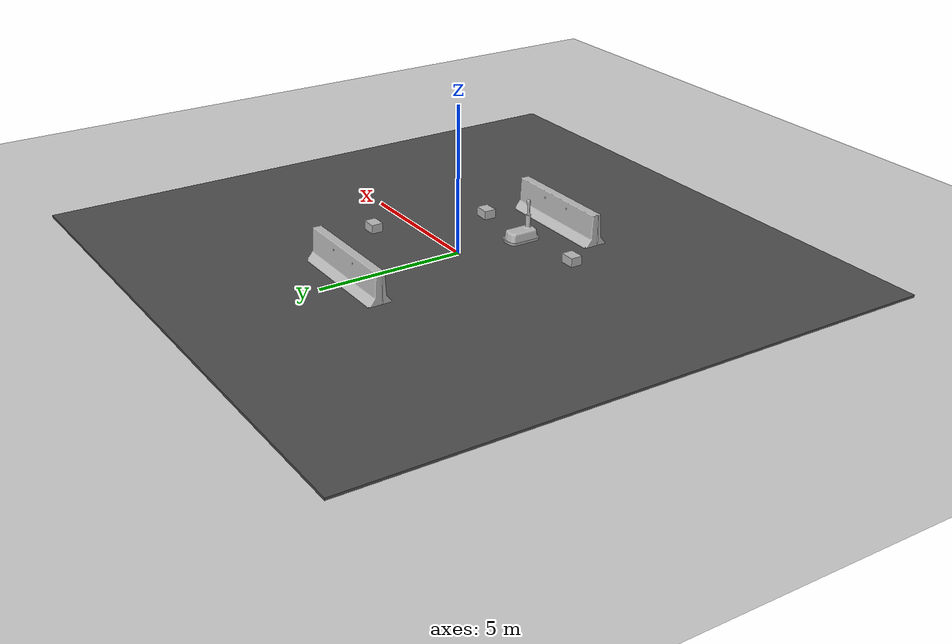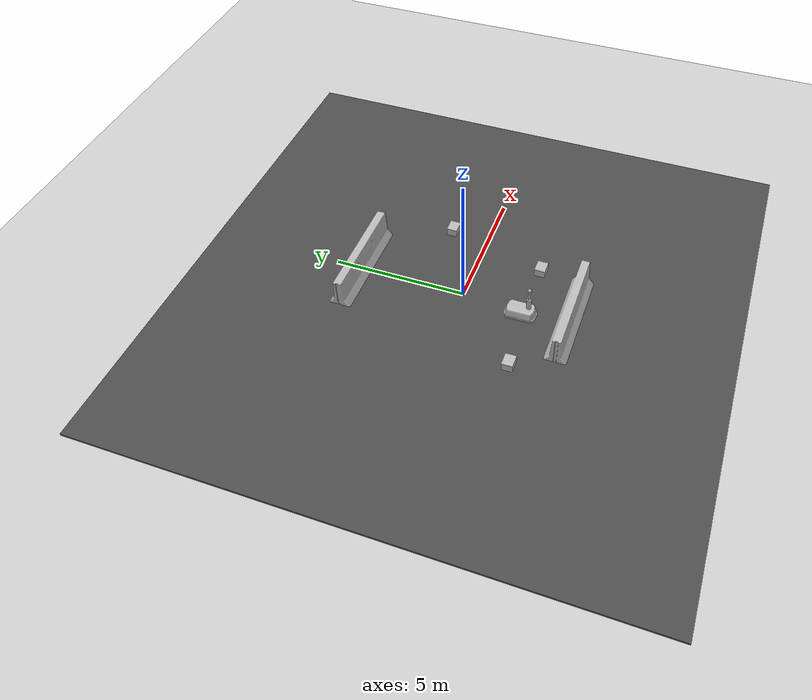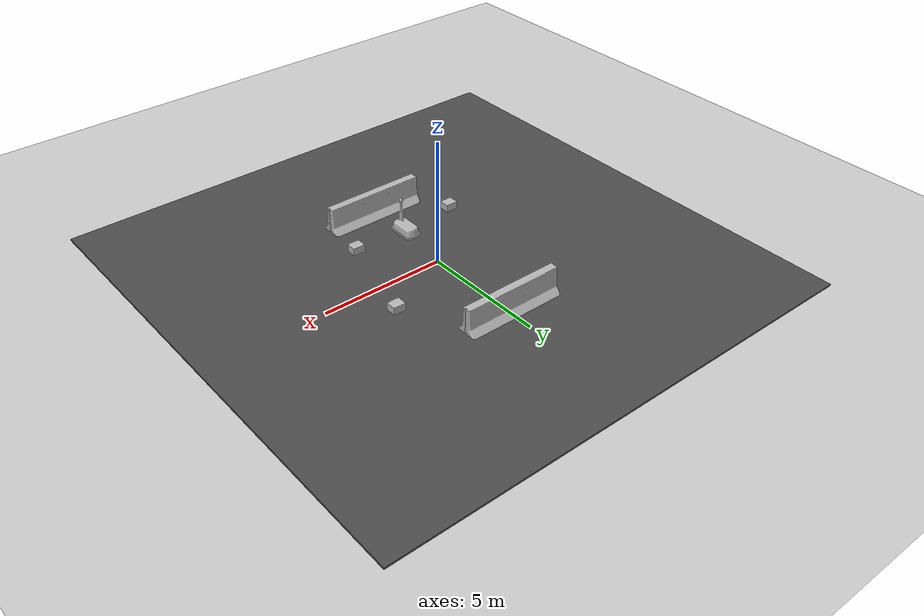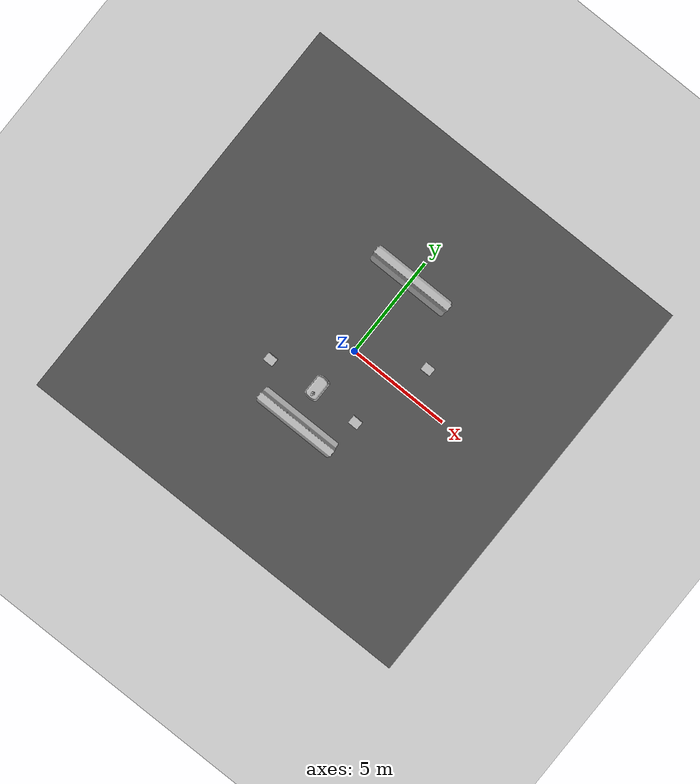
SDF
<sdf version="1.7">
 <world name="default">
  <light name="sun" type="directional">
   <pose>0 0 10 0 -0 0</pose>
   <diffuse>0.8 0.8 0.8 1</diffuse>
   <specular>0.2 0.2 0.2 1</specular>
   <attenuation>
    <range>1000</range>
    <constant>0.9</constant>
    <linear>0.01</linear>
    <quadratic>0.001</quadratic>
   </attenuation>
   <direction>-0.5 0.1 -0.9</direction>
   <spot><inner_angle>0</inner_angle><outer_angle>0</outer_angle><falloff>0</falloff></spot>
  </light>
  <model name="ground_plane">
   <static>1</static>
   <link name="link">
    <collision name="collision">
     <geometry><plane><normal>0 0 1</normal><size>100 100</size></plane></geometry>
     <surface>
      <contact><collide_bitmask>65535</collide_bitmask></contact>
      <friction><ode><mu>100</mu><mu2>50</mu2></ode></friction>
     </surface>
    </collision>
    <visual name="visual">
     <cast_shadows>0</cast_shadows>
     <geometry><plane><normal>0 0 1</normal><size>100 100</size></plane></geometry>
     <material>
      <script><uri>file://media/materials/scripts/gazebo.material</uri><name>Gazebo/Grey</name></script>
     </material>
    </visual>
   </link>
  </model>
  <gravity>0 0 -9.8</gravity>
  <magnetic_field>6e-06 2.3e-05 -4.2e-05</magnetic_field>
  <atmosphere type="adiabatic"/>
  <physics type="ode">
   <max_step_size>0.001</max_step_size>
   <real_time_factor>1</real_time_factor>
   <real_time_update_rate>1000</real_time_update_rate>
  </physics>
  <scene><ambient>0.4 0.4 0.4 1</ambient><background>0.7 0.7 0.7 1</background><shadows>1</shadows></scene>
  <spherical_coordinates>
   <surface_model>EARTH_WGS84</surface_model>
   <latitude_deg>0</latitude_deg>
   <longitude_deg>0</longitude_deg>
   <elevation>0</elevation>
   <heading_deg>0</heading_deg>
  </spherical_coordinates>
  <model name="asphalt_plane">
   <static>1</static>
   <link name="link">
    <collision name="collision"><geometry><box><size>20 20 0.1</size></box></geometry></collision>
    <visual name="visual">
     <cast_shadows>0</cast_shadows>
     <geometry><box><size>20 20 0.1</size></box></geometry>
     <material>
      <script>
       <uri>model://asphalt_plane/materials/scripts</uri>
       <uri>model://asphalt_plane/materials/textures</uri>
       <name>vrc/asphalt</name>
      </script>
     </material>
    </visual>
   </link>
   <pose>-0.020091 0.057762 0 0 -0 0</pose>
  </model>
  <model name="jersey_barrier">
   <static>1</static>
   <link name="link">
    <visual name="visual">
     <geometry><mesh><uri>model://jersey_barrier/meshes/jersey_barrier.dae</uri></mesh></geometry>
    </visual>
    <collision name="upright">
     <pose>0 0 0.5715 0 -0 0</pose>
     <geometry><box><size>4.06542 0.3063 1.143</size></box></geometry>
    </collision>
    <collision name="base">
     <pose>0 0 0.032258 0 -0 0</pose>
     <geometry><box><size>4.06542 0.8107 0.064516</size></box></geometry>
    </collision>
    <collision name="base2">
     <pose>0 0 0.1 0 -0 0</pose>
     <geometry><box><size>4.06542 0.65 0.1</size></box></geometry>
    </collision>
    <collision name="base3">
     <pose>0 0 0.2 0 -0 0</pose>
     <geometry><box><size>4.06542 0.5 0.1</size></box></geometry>
    </collision>
    <collision name="left-angle">
     <pose>0 -0.224 0.2401 0.9 -0 0</pose>
     <geometry><box><size>4.06542 0.5 0.064516</size></box></geometry>
    </collision>
    <collision name="right-angle">
     <pose>0 0.224 0.2401 -0.9 0 0</pose>
     <geometry><box><size>4.06542 0.5 0.064516</size></box></geometry>
    </collision>
   </link>
   <pose>0 4 0 0 -0 0</pose>
  </model>
  <model name="jersey_barrier_0">
   <static>1</static>
   <link name="link">
    <visual name="visual">
     <geometry><mesh><uri>model://jersey_barrier/meshes/jersey_barrier.dae</uri></mesh></geometry>
    </visual>
    <collision name="upright">
     <pose>0 0 0.5715 0 -0 0</pose>
     <geometry><box><size>4.06542 0.3063 1.143</size></box></geometry>
    </collision>
    <collision name="base">
     <pose>0 0 0.032258 0 -0 0</pose>
     <geometry><box><size>4.06542 0.8107 0.064516</size></box></geometry>
    </collision>
    <collision name="base2">
     <pose>0 0 0.1 0 -0 0</pose>
     <geometry><box><size>4.06542 0.65 0.1</size></box></geometry>
    </collision>
    <collision name="base3">
     <pose>0 0 0.2 0 -0 0</pose>
     <geometry><box><size>4.06542 0.5 0.1</size></box></geometry>
    </collision>
    <collision name="left-angle">
     <pose>0 -0.224 0.2401 0.9 -0 0</pose>
     <geometry><box><size>4.06542 0.5 0.064516</size></box></geometry>
    </collision>
    <collision name="right-angle">
     <pose>0 0.224 0.2401 -0.9 0 0</pose>
     <geometry><box><size>4.06542 0.5 0.064516</size></box></geometry>
    </collision>
   </link>
   <pose>0 -4 0 0 -0 0</pose>
  </model>
  <model name="cardboard_box">
   <pose>1.98646 -2.39561 0.199012 -3.6e-05 -2.2e-05 -0.021077</pose>
   <link name="link">
    <inertial>
     <mass>2</mass>
     <inertia>
      <ixx>0.0416667</ixx>
      <ixy>0</ixy>
      <ixz>0</ixz>
      <iyy>0.0566667</iyy>
      <iyz>0</iyz>
      <izz>0.0683333</izz>
     </inertia>
    </inertial>
    <collision name="collision">
     <geometry><box><size>0.5 0.4 0.3</size></box></geometry>
     <surface>
      <friction><ode><mu>1</mu><mu2>1</mu2></ode></friction>
      <contact><ode><kp>1e+07</kp><kd>1</kd><min_depth>0.001</min_depth><max_vel>0.1</max_vel></ode></contact>
     </surface>
    </collision>
    <visual name="visual">
     <pose>0 0 -0.15 0 -0 0</pose>
     <geometry>
      <mesh><uri>model://cardboard_box/meshes/cardboard_box.dae</uri><scale>1.25932 1.00745 0.755591</scale></mesh>
     </geometry>
    </visual>
   </link>
  </model>
  <model name="cardboard_box_0">
   <pose>3 1.42102 0.199 0 -0 0</pose>
   <link name="link">
    <inertial>
     <mass>2</mass>
     <inertia>
      <ixx>0.0416667</ixx>
      <ixy>0</ixy>
      <ixz>0</ixz>
      <iyy>0.0566667</iyy>
      <iyz>0</iyz>
      <izz>0.0683333</izz>
     </inertia>
    </inertial>
    <collision name="collision">
     <geometry><box><size>0.5 0.4 0.3</size></box></geometry>
     <surface>
      <friction><ode><mu>1</mu><mu2>1</mu2></ode></friction>
      <contact><ode><kp>1e+07</kp><kd>1</kd><min_depth>0.001</min_depth><max_vel>0.1</max_vel></ode></contact>
     </surface>
    </collision>
    <visual name="visual">
     <pose>0 0 -0.15 0 -0 0</pose>
     <geometry>
      <mesh><uri>model://cardboard_box/meshes/cardboard_box.dae</uri><scale>1.25932 1.00745 0.755591</scale></mesh>
     </geometry>
    </visual>
   </link>
  </model>
  <model name="cardboard_box_1">
   <pose>-2.64583 -2.56991 0.199 0 -0 0</pose>
   <link name="link">
    <inertial>
     <mass>2</mass>
     <inertia>
      <ixx>0.0416667</ixx>
      <ixy>0</ixy>
      <ixz>0</ixz>
      <iyy>0.0566667</iyy>
      <iyz>0</iyz>
      <izz>0.0683333</izz>
     </inertia>
    </inertial>
    <collision name="collision">
     <geometry><box><size>0.5 0.4 0.3</size></box></geometry>
     <surface>
      <friction><ode><mu>1</mu><mu2>1</mu2></ode></friction>
      <contact><ode><kp>1e+07</kp><kd>1</kd><min_depth>0.001</min_depth><max_vel>0.1</max_vel></ode></contact>
     </surface>
    </collision>
    <visual name="visual">
     <pose>0 0 -0.15 0 -0 0</pose>
     <geometry>
      <mesh><uri>model://cardboard_box/meshes/cardboard_box.dae</uri><scale>1.25932 1.00745 0.755591</scale></mesh>
     </geometry>
    </visual>
   </link>
  </model>
  <model name="warehouse_robot">
   <static>1</static>
   <link name="link">
    <visual name="visual">
     <geometry><mesh><uri>model://warehouse_robot/meshes/robot.dae</uri></mesh></geometry>
    </visual>
    <collision name="collision_base">
     <pose>0 0 0.20437 0 -0 0</pose>
     <geometry><box><size>0.55508 1.0228 0.40874</size></box></geometry>
    </collision>
    <collision name="collision_bumper">
     <pose>0 0 0.062205 0 -0 0</pose>
     <geometry><box><size>0.67266 1.17126 0.12441</size></box></geometry>
    </collision>
    <collision name="collision_column_large">
     <pose>0 -0.27539 0.43738 0 -0 0</pose>
     <geometry><cylinder><radius>0.08652</radius><length>0.87476</length></cylinder></geometry>
    </collision>
    <collision name="collision_column_small">
     <pose>0 -0.27539 0.70424 0 -0 0</pose>
     <geometry><cylinder><radius>0.04261</radius><length>1.40848</length></cylinder></geometry>
    </collision>
   </link>
   <pose>-0.262005 -2.27334 0 0 -0 0</pose>
  </model>
 </world>
</sdf>
